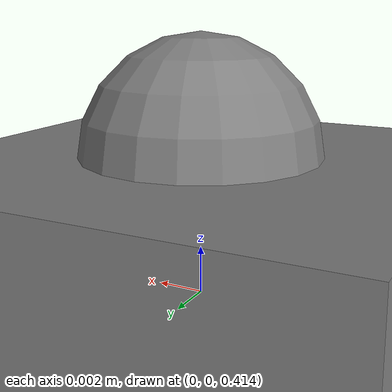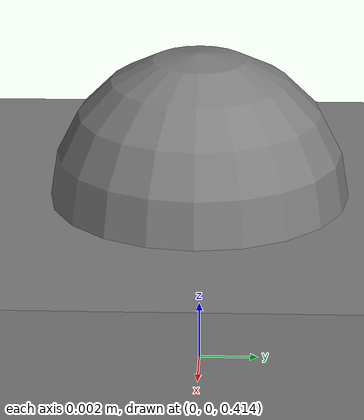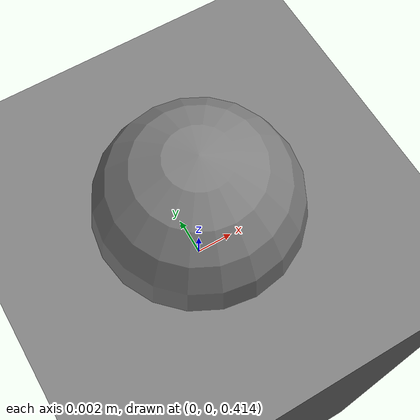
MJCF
<mujoco model="marker_floating_fixed">
  <worldbody>
    <geom name="floor" type="plane" size="5 5 0.1"/>
    <body name="table" pos="0 0 0.4">
      <geom name="table_geom" type="box" size="0.2 0.2 0.02" mass="2.0"/>
      <site name="grasp_marker" pos="0 0 0.02" group="2"/>
    </body>
  </worldbody>
</mujoco>
